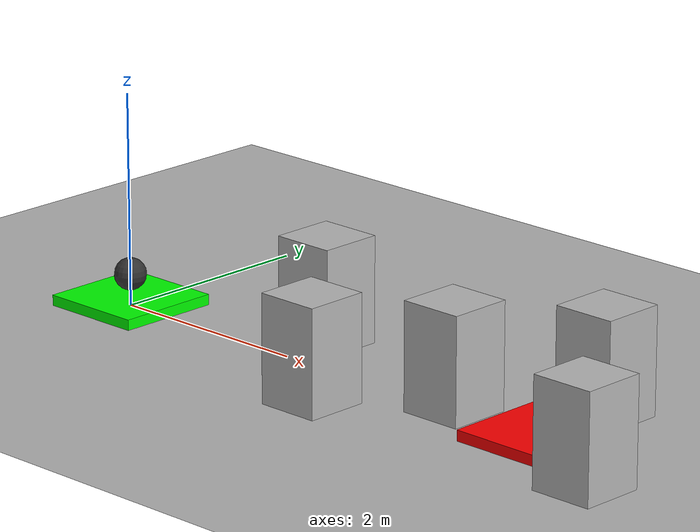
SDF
<?xml version="1.0" ?>
<sdf version="1.6">
  <world name="rl_test_world">

    <!-- Physics -->
    <physics type="ode">
      <real_time_update_rate>1000</real_time_update_rate>
      <max_step_size>0.001</max_step_size>
      <real_time_factor>1</real_time_factor>
    </physics>

    <!-- Light -->
    <light name="sun" type="directional">
      <pose>0 0 10 0 0 0</pose>
      <diffuse>1 1 1 1</diffuse>
      <specular>0.1 0.1 0.1 1</specular>
      <direction>-0.5 0.1 -1</direction>
    </light>

    <!-- Ground -->
    <model name="ground">
      <static>true</static>
      <link name="link">
        <collision name="collision">
          <geometry>
            <plane>
              <normal>0 0 1</normal>
              <size>50 50</size>
            </plane>
          </geometry>
        </collision>
        <visual name="visual">
          <geometry>
            <plane>
              <normal>0 0 1</normal>
              <size>50 50</size>
            </plane>
          </geometry>
          <material>
            <ambient>0.7 0.7 0.7 1</ambient>
          </material>
        </visual>
      </link>
    </model>

    <!-- START PAD -->
    <model name="start_pad">
      <static>true</static>
      <pose>0 0 0.05 0 0 0</pose>
      <link name="link">
        <visual name="visual">
          <geometry>
            <box><size>1 1 0.1</size></box>
          </geometry>
          <material>
            <ambient>0 1 0 1</ambient>
          </material>
        </visual>
      </link>
    </model>

    <!-- GOAL PAD -->
    <model name="goal_pad">
      <static>true</static>
      <pose>5 0 0.05 0 0 0</pose>
      <link name="link">
        <visual name="visual">
          <geometry>
            <box><size>1 1 0.1</size></box>
          </geometry>
          <material>
            <ambient>1 0 0 1</ambient>
          </material>
        </visual>
      </link>
    </model>

    <!-- OBSTACLES -->
<!-- OBSTACLE FIELD -->
<!-- Cylinders arranged randomly -->
<model name="obstacles">
  <static>true</static>

  <!-- Repeat pattern -->
<!-- ================= OBSTACLES ================= -->

<model name="obstacle_1">
  <static>true</static>
  <pose>2 0.5 0.5 0 0 0</pose>
  <link name="link">
    <collision name="collision">
      <geometry><box><size>0.6 0.6 1.0</size></box></geometry>
    </collision>
    <visual name="visual">
      <geometry><box><size>0.6 0.6 1.0</size></box></geometry>
    </visual>
  </link>
</model>

<model name="obstacle_2">
  <static>true</static>
  <pose>3 -0.7 0.5 0 0 0</pose>
  <link name="link">
    <collision name="collision">
      <geometry><box><size>0.6 0.6 1.0</size></box></geometry>
    </collision>
    <visual name="visual">
      <geometry><box><size>0.6 0.6 1.0</size></box></geometry>
    </visual>
  </link>
</model>

<model name="obstacle_3">
  <static>true</static>
  <pose>4 0.0 0.5 0 0 0</pose>
  <link name="link">
    <collision name="collision">
      <geometry><box><size>0.6 0.6 1.0</size></box></geometry>
    </collision>
    <visual name="visual">
      <geometry><box><size>0.6 0.6 1.0</size></box></geometry>
    </visual>
  </link>
</model>

<model name="obstacle_4">
  <static>true</static>
  <pose>5 0.8 0.5 0 0 0</pose>
  <link name="link">
    <collision name="collision">
      <geometry><box><size>0.6 0.6 1.0</size></box></geometry>
    </collision>
    <visual name="visual">
      <geometry><box><size>0.6 0.6 1.0</size></box></geometry>
    </visual>
  </link>
</model>

<model name="obstacle_5">
  <static>true</static>
  <pose>6 -0.6 0.5 0 0 0</pose>
  <link name="link">
    <collision name="collision">
      <geometry><box><size>0.6 0.6 1.0</size></box></geometry>
    </collision>
    <visual name="visual">
      <geometry><box><size>0.6 0.6 1.0</size></box></geometry>
    </visual>
  </link>
</model>

</model>
    <!-- DRONE -->
    <include>
      <uri>file:///home/ghost/rl_drone_sim/models/simple_quad</uri>
      <pose>0 0 0.3 0 0 0</pose>
    </include>

  </world>
</sdf>

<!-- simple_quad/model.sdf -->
<sdf version="1.6">
  <model name="simple_quad">
    <pose>0 0 0.3 0 0 0</pose>
    <static>false</static>

    <link name="base_link">
      <inertial>
        <mass>1.0</mass>
        <inertia>
          <ixx>0.02</ixx>
          <iyy>0.02</iyy>
          <izz>0.04</izz>
        </inertia>
      </inertial>

      <collision name="collision">
        <geometry>
          <sphere><radius>0.15</radius></sphere>
        </geometry>
      </collision>

      <visual name="visual">
        <geometry>
          <sphere><radius>0.15</radius></sphere>
        </geometry>
        <material>
          <ambient>0.2 0.2 0.2 1</ambient>
        </material>
      </visual>
    </link>
   <plugin name="simple_controller" filename="libsimple_controller.so"/>
  </model>
</sdf>
